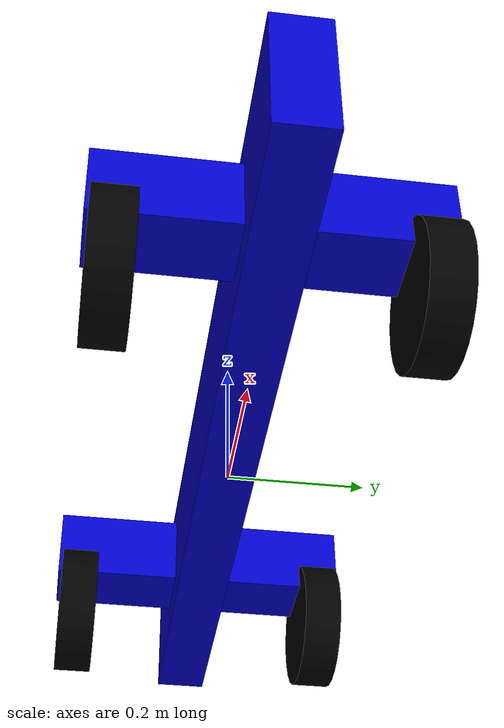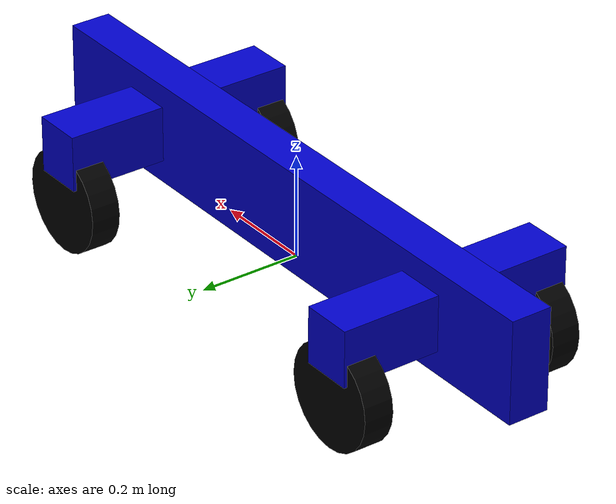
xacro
<?xml version="1.0"?>
<!-- Glados -->
<robot name="Glados" xmlns:xacro="http://www.ros.org/wiki/xacro">

  <!-- Constants for robot dimensions -->
  <xacro:property name="PI" value="3.1415926535897931"/>
  <xacro:property name="body_mass" value="10" />
  <xacro:property name="wheel_mass" value="1" />
  <xacro:property name="length" value="1.3" />
  <xacro:property name="width" value="0.08" />
  <xacro:property name="height" value="0.200" />
  <xacro:property name="wheel_width" value="0.058" />
  <xacro:property name="wheel_radius" value="0.1" />
  <xacro:property name="wheel_offset" value="0.006" />
  <xacro:property name="damping" value="0.0" />
  <xacro:property name="height_base_link" value="0.1" />
  <xacro:property name="frame_length" value="0.1" />
  <xacro:property name="frame_width" value="0.47" />
  <xacro:property name="frame_height" value="0.11" />
  <xacro:property name="height_front_and_back_frame" value="0.1" />
  <xacro:property name="distance_from_center_of_base_to_frame" value="0.406" />
  <xacro:property name="distance_from_center_of_frame_to_wheel" value="0.2" />

<material name="blue">
    <color rgba="0 0 .8 1"/>
  </material>
  <material name="black">
    <color rgba="0 0 0 1"/>
  </material>
  <material name="white">
    <color rgba="1 1 1 1"/>
</material>

  <link name="base_link">
    <collision>
      <geometry>
        <box size="${length} ${width} ${height}"/>
      </geometry>
     <origin rpy="0 0 0" xyz="0 0 ${height_base_link}"/>
    </collision>
    <visual>
      <geometry>
        <box size="${length} ${width} ${height}"/>
      </geometry>
     <origin rpy="0 0 0" xyz="0 0 ${height_base_link}"/>
    <material name="blue"/>
    </visual>
    <inertial>
      <origin rpy="0 0 0" xyz="0 0 ${height_base_link}"/>
      <mass value="${body_mass}"/>
      <inertia
	  ixx="${(body_mass/12)*(height*height+width*width)}" ixy="0.0" ixz="0.0"
	  iyy="${(body_mass/12)*(height*height+length*length)}" iyz="0.0"
	  izz="${(body_mass/12)*(length*length+width*width)}"/>
    </inertial>
  </link>

  <link name="front_part">
    <visual>
      <geometry>
        <box size="${frame_length} ${frame_width} ${frame_height}"/>
      </geometry>
     <origin rpy="0 0 0" xyz="0 0 ${height_front_and_back_frame}"/>
    <material name="blue"/>
    </visual>
    <inertial>
      <origin rpy="0 0 0" xyz="0 0 ${height_front_and_back_frame}"/>
      <mass value="${body_mass}"/>
      <inertia
	  ixx="${(body_mass/12)*(height*height+width*width)}" ixy="0.0" ixz="0.0"
	  iyy="${(body_mass/12)*(height*height+length*length)}" iyz="0.0"
	  izz="${(body_mass/12)*(length*length+width*width)}"/>
    </inertial>
  </link>

 <link name="back_part">
    <visual>
      <geometry>
        <box size="${frame_length} ${frame_width} ${frame_height}"/>
      </geometry>
     <origin rpy="0 0 0" xyz="0 0 ${height_front_and_back_frame}"/>
    <material name="blue"/>
    </visual>
    <inertial>
      <origin rpy="0 0 0" xyz="0 0 ${height_front_and_back_frame}"/>
      <mass value="${body_mass}"/>
      <inertia
	  ixx="${(body_mass/12)*(height*height+width*width)}" ixy="0.0" ixz="0.0"
	  iyy="${(body_mass/12)*(height*height+length*length)}" iyz="0.0"
	  izz="${(body_mass/12)*(length*length+width*width)}"/>
    </inertial>
  </link>

  <link name="left_front_wheel">
     <collision>
      <geometry>
        <cylinder length="${wheel_width}" radius="${wheel_radius}"/>
      </geometry>
     <origin rpy="${PI/2} 0 0 "/>
    <material name="black"/>
    </collision>
  <visual>
      <geometry>
        <cylinder length="${wheel_width}" radius="${wheel_radius}"/>
      </geometry>
     <origin rpy="${PI/2} 0 0 "/>
    <material name="black"/>
    </visual>
    <inertial>
       <origin rpy="0 0 0" xyz="0 0 0"/>
      <mass value="${wheel_mass}"/>
      <inertia
	  ixx="${(wheel_mass/12)*(3*wheel_radius*wheel_radius*wheel_radius+wheel_width*wheel_width)}" ixy="0.00" ixz="0.00"
	  iyy="${(wheel_mass*wheel_radius)/2}" iyz="0.00"
	  izz="${(wheel_mass/12)*(3*wheel_radius*wheel_radius*wheel_radius+wheel_width*wheel_width)}"/>
    </inertial>
  </link>

  <link name="right_front_wheel">
    <collision>
      <geometry>
        <cylinder length="${wheel_width}" radius="${wheel_radius}"/>
      </geometry>
     <origin rpy="${PI/2} 0 0 "/>
    <material name="black"/>
    </collision>
    <visual>
      <geometry>
        <cylinder length="${wheel_width}" radius="${wheel_radius}"/>
      </geometry>
     <origin rpy="${PI/2} 0 0 "/>
    <material name="black"/>
    </visual>
    <inertial>
       <origin rpy="0 0 0" xyz="0 0 0"/>
      <mass value="${wheel_mass}"/>
      <inertia
	  ixx="${(wheel_mass/12)*(3*wheel_radius*wheel_radius*wheel_radius+wheel_width*wheel_width)}" ixy="0.00" ixz="0.00"
	  iyy="${(wheel_mass*wheel_radius)/2}" iyz="0.00"
	  izz="${(wheel_mass/12)*(3*wheel_radius*wheel_radius*wheel_radius+wheel_width*wheel_width)}"/>
    </inertial>
  </link>

<link name="right_back_wheel">
    <collision>
      <geometry>
        <cylinder length="${wheel_width}" radius="${wheel_radius}"/>
      </geometry>
     <origin rpy="${PI/2} 0 0 "/>
    <material name="black"/>
    </collision>
    <visual>
      <geometry>
        <cylinder length="${wheel_width}" radius="${wheel_radius}"/>
      </geometry>
     <origin rpy="${PI/2} 0 0 "/>
    <material name="black"/>
    </visual>
    <inertial>
       <origin rpy="0 0 0" xyz="0 0 0"/>
      <mass value="${wheel_mass}"/>
      <inertia
	  ixx="${(wheel_mass/12)*(3*wheel_radius*wheel_radius*wheel_radius+wheel_width*wheel_width)}" ixy="0.00" ixz="0.00"
	  iyy="${(wheel_mass*wheel_radius)/2}" iyz="0.00"
	  izz="${(wheel_mass/12)*(3*wheel_radius*wheel_radius*wheel_radius+wheel_width*wheel_width)}"/>
    </inertial>
  </link>

<link name="left_back_wheel">
    <collision>
      <geometry>
        <cylinder length="${wheel_width}" radius="${wheel_radius}"/>
      </geometry>
     <origin rpy="${PI/2} 0 0 "/>
    <material name="black"/>
    </collision>
    <visual>
      <geometry>
        <cylinder length="${wheel_width}" radius="${wheel_radius}"/>
      </geometry>
     <origin rpy="${PI/2} 0 0 "/>
    <material name="black"/>
    </visual>
    <inertial>
       <origin rpy="0 0 0" xyz="0 0 0"/>
      <mass value="${wheel_mass}"/>
      <inertia
	  ixx="${(wheel_mass/12)*(3*wheel_radius*wheel_radius*wheel_radius+wheel_width*wheel_width)}" ixy="0.00" ixz="0.00"
	  iyy="${(wheel_mass*wheel_radius)/2}" iyz="0.00"
	  izz="${(wheel_mass/12)*(3*wheel_radius*wheel_radius*wheel_radius+wheel_width*wheel_width)}"/>
    </inertial>
  </link>

  <joint name="base_to_front_part" type="continuous">
   <axis rpy="0 0 0" xyz="0 0 1"/>
   <parent link="base_link"/>
    <child link="front_part"/>
    <origin xyz="${distance_from_center_of_base_to_frame} 0 0"/>
    <dynamics damping="${damping}"/>
  </joint>

  <joint name="base_to_back_part" type="continuous">
   <axis rpy="0 0 0" xyz="0 0 1"/>
   <parent link="base_link"/>
    <child link="back_part"/>
    <origin xyz="-${distance_from_center_of_base_to_frame} 0 0"/>
    <dynamics damping="${damping}"/>
  </joint>

   <joint name="front_part_to_left_front_wheel" type="continuous">
   <axis rpy="0 0 0" xyz="0 1 0"/>
   <parent link="front_part"/>
    <child link="left_front_wheel"/>
    <origin xyz="0.0 ${distance_from_center_of_frame_to_wheel} 0"/>
    <dynamics damping="${damping}"/>
  </joint>

  <joint name="back_part_to_left_back_wheel" type="continuous">
   <axis rpy="0 0 0" xyz="0 1 0"/>
   <parent link="back_part"/>
    <child link="left_back_wheel"/>
    <origin xyz="0.0 ${distance_from_center_of_frame_to_wheel} 0"/>
    <dynamics damping="${damping}"/>
  </joint>

  <joint name="front_part_to_right_front_wheel" type="continuous">
    <axis rpy="0 0 0" xyz="0 1 0"/>
    <parent link="front_part"/>
    <child link="right_front_wheel"/>
    <origin xyz="0.0 -${distance_from_center_of_frame_to_wheel} 0"/>
    <dynamics damping="${damping}"/>
  </joint>

  <joint name="back_part_to_right_back_wheel" type="continuous">
    <axis rpy="0 0 0" xyz="0 1 0"/>
    <parent link="back_part"/>
    <child link="right_back_wheel"/>
    <origin xyz="0.0 -${distance_from_center_of_frame_to_wheel} 0"/>
    <dynamics damping="${damping}"/>
  </joint>

 <!--Transmission  -->

 <transmission name="left_front_transmission">
    <type>transmission_interface/SimpleTransmission</type>
    <joint name="front_part_to_left_front_wheel">
      <hardwareInterface>VelocityJointInterface</hardwareInterface>
    </joint>
    <actuator name="motor1">
      <mechanicalReduction>1</mechanicalReduction>
    </actuator>
  </transmission>

 <transmission name="left_back_transmission">
    <type>transmission_interface/SimpleTransmission</type>
    <joint name="back_part_to_left_back_wheel">
      <hardwareInterface>VelocityJointInterface</hardwareInterface>
    </joint>
    <actuator name="motor3">
      <mechanicalReduction>1</mechanicalReduction>
    </actuator>
  </transmission>

  <transmission name="right_front_transmission">
    <type>transmission_interface/SimpleTransmission</type>
    <joint name="front_part_to_right_front_wheel">
      <hardwareInterface>VelocityJointInterface</hardwareInterface>
    </joint>
    <actuator name="motor2">
      <mechanicalReduction>1</mechanicalReduction>
    </actuator>
  </transmission>

  <transmission name="right_back_transmission">
    <type>transmission_interface/SimpleTransmission</type>
    <joint name="back_part_to_right_back_wheel">
      <hardwareInterface>VelocityJointInterface</hardwareInterface>
    </joint>
    <actuator name="motor4">
      <mechanicalReduction>1</mechanicalReduction>
    </actuator>
  </transmission>

</robot>
